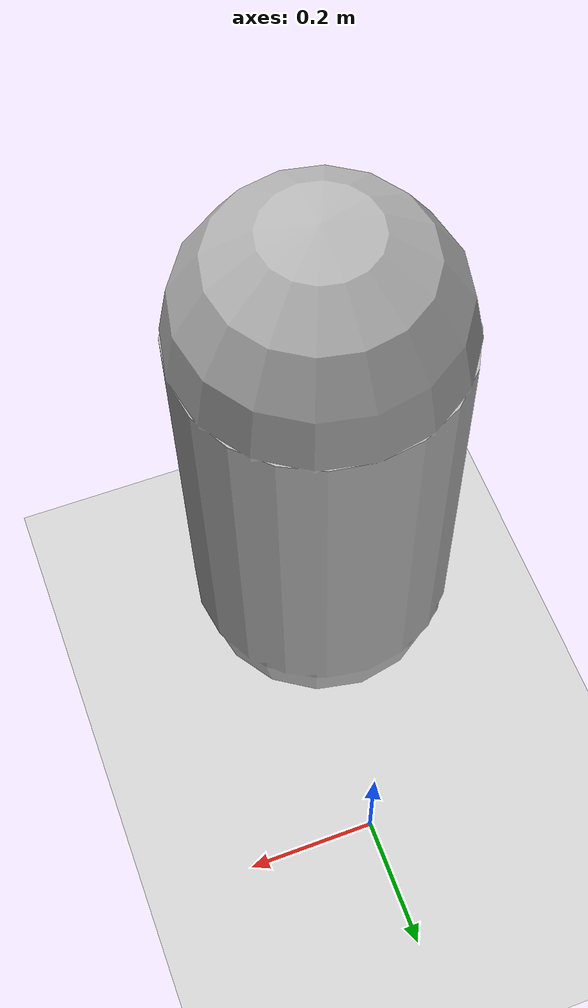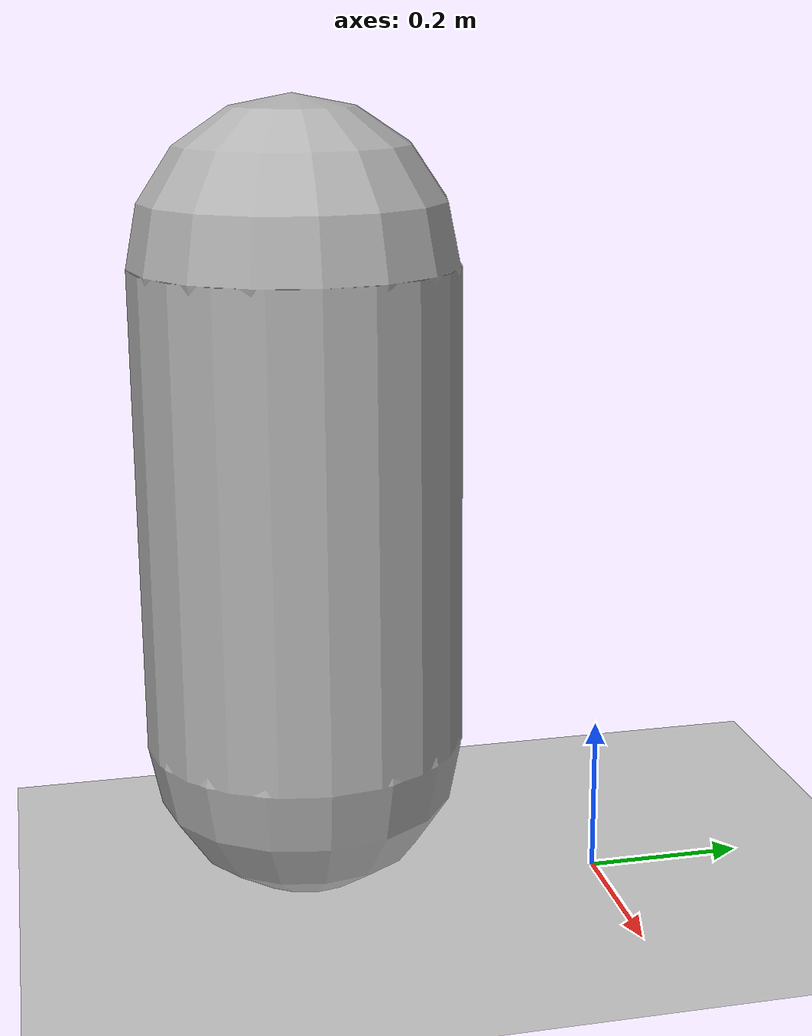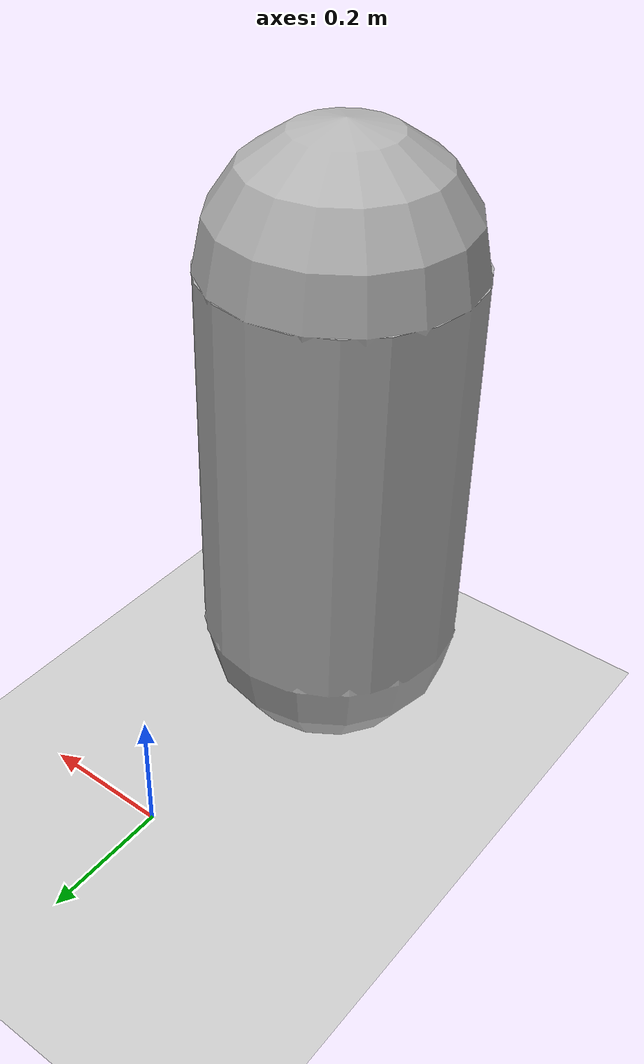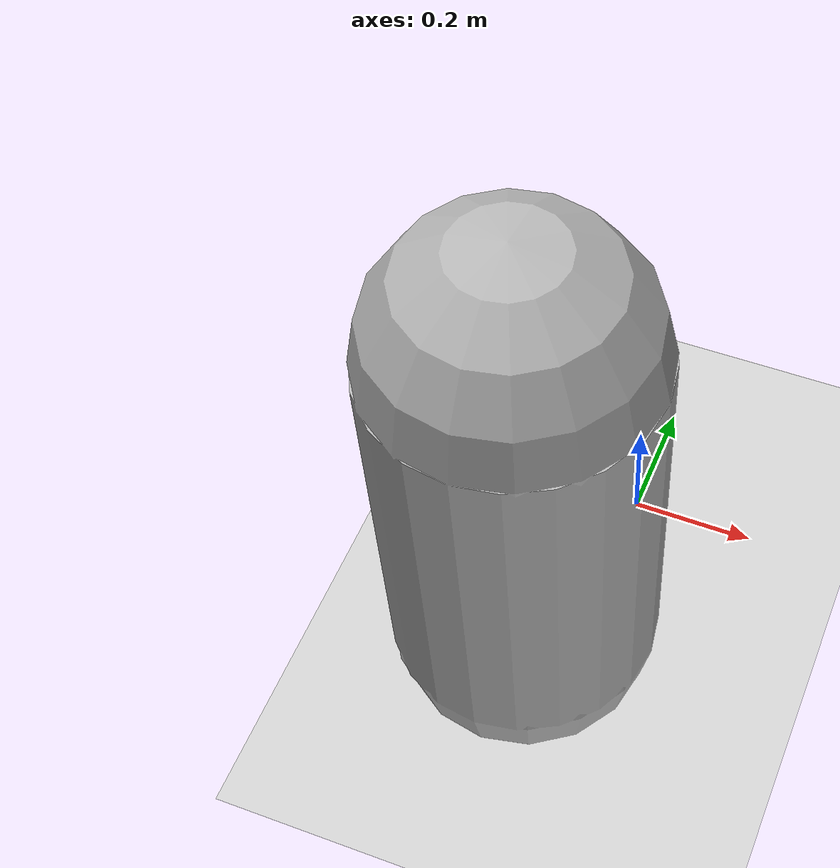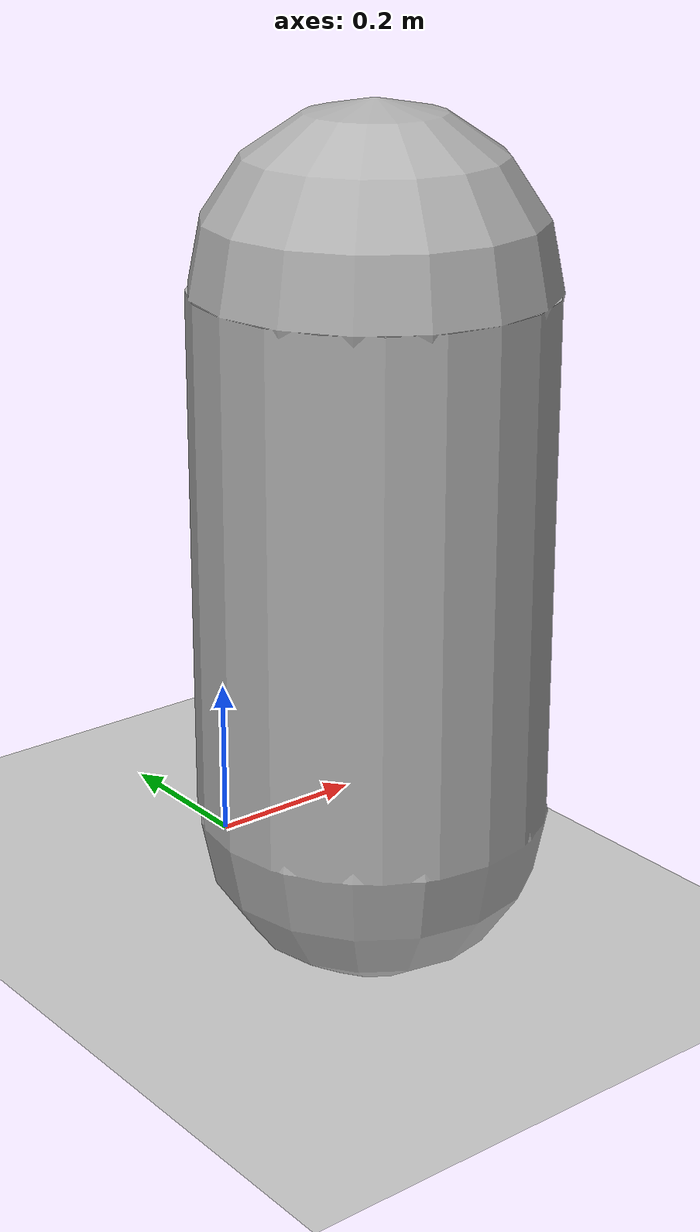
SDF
<sdf version='1.9'>
  <world name='empty'>
    <physics name='1ms' type='ignored'>
      <max_step_size>0.001</max_step_size>
      <real_time_factor>1</real_time_factor>
      <real_time_update_rate>1000</real_time_update_rate>
    </physics>
    <plugin name='gz::sim::systems::Physics' filename='ignition-gazebo-physics-system'/>
    <plugin name='gz::sim::systems::UserCommands' filename='ignition-gazebo-user-commands-system'/>
    <plugin name='gz::sim::systems::SceneBroadcaster' filename='ignition-gazebo-scene-broadcaster-system'/>
    <plugin name='gz::sim::systems::Contact' filename='ignition-gazebo-contact-system'/>
    <gravity>0 0 -9.8</gravity>
    <magnetic_field>6e-06 2.3e-05 -4.2e-05</magnetic_field>
    <atmosphere type='adiabatic'/>
    <scene>
      <ambient>0.4 0.4 0.4 1</ambient>
      <background>0.7 0.7 0.7 1</background>
      <shadows>true</shadows>
    </scene>
    <model name='ground_plane'>
      <static>true</static>
      <link name='link'>
        <collision name='collision'>
          <geometry>
            <plane>
              <normal>0 0 1</normal>
              <size>100 100</size>
            </plane>
          </geometry>
          <surface>
            <friction>
              <ode/>
            </friction>
            <bounce/>
            <contact/>
          </surface>
        </collision>
        <visual name='visual'>
          <geometry>
            <plane>
              <normal>0 0 1</normal>
              <size>100 100</size>
            </plane>
          </geometry>
          <material>
            <ambient>0.8 0.8 0.8 1</ambient>
            <diffuse>0.8 0.8 0.8 1</diffuse>
            <specular>0.8 0.8 0.8 1</specular>
          </material>
        </visual>
        <pose>0 0 0 0 -0 0</pose>
        <inertial>
          <pose>0 0 0 0 -0 0</pose>
          <mass>1</mass>
          <inertia>
            <ixx>1</ixx>
            <ixy>0</ixy>
            <ixz>0</ixz>
            <iyy>1</iyy>
            <iyz>0</iyz>
            <izz>1</izz>
          </inertia>
        </inertial>
        <enable_wind>false</enable_wind>
      </link>
      <pose>0 0 0 0 -0 0</pose>
      <self_collide>false</self_collide>
    </model>
    <model name='capsule'>
      <pose>-0.054414 -0.370705 0.5 0 -0 0</pose>
      <link name='capsule_link'>
        <inertial>
          <inertia>
            <ixx>0.074153999999999998</ixx>
            <ixy>0</ixy>
            <ixz>0</ixz>
            <iyy>0.074153999999999998</iyy>
            <iyz>0</iyz>
            <izz>0.018769000000000001</izz>
          </inertia>
          <mass>1</mass>
          <pose>0 0 0 0 -0 0</pose>
        </inertial>
        <collision name='capsule_collision'>
          <geometry>
            <capsule>
              <radius>0.20000000000000001</radius>
              <length>0.59999999999999998</length>
            </capsule>
          </geometry>
          <surface>
            <friction>
              <ode/>
            </friction>
            <bounce/>
            <contact/>
          </surface>
        </collision>
        <visual name='capsule_visual'>
          <geometry>
            <capsule>
              <radius>0.20000000000000001</radius>
              <length>0.59999999999999998</length>
            </capsule>
          </geometry>
          <material>
            <ambient>0.3 0.3 0.3 1</ambient>
            <diffuse>0.7 0.7 0.7 1</diffuse>
            <specular>1 1 1 1</specular>
          </material>
        </visual>
        <pose>0 0 0 0 -0 0</pose>
        <enable_wind>false</enable_wind>
      </link>
      <static>false</static>
      <self_collide>false</self_collide>
    </model>
    <light name='sun' type='directional'>
      <pose>0 0 10 0 -0 0</pose>
      <cast_shadows>true</cast_shadows>
      <intensity>1</intensity>
      <direction>-0.5 0.1 -0.9</direction>
      <diffuse>0.8 0.8 0.8 1</diffuse>
      <specular>0.2 0.2 0.2 1</specular>
      <attenuation>
        <range>1000</range>
        <linear>0.01</linear>
        <constant>0.90000000000000002</constant>
        <quadratic>0.001</quadratic>
      </attenuation>
      <spot>
        <inner_angle>0</inner_angle>
        <outer_angle>0</outer_angle>
        <falloff>0</falloff>
      </spot>
    </light>
  </world>
</sdf>
